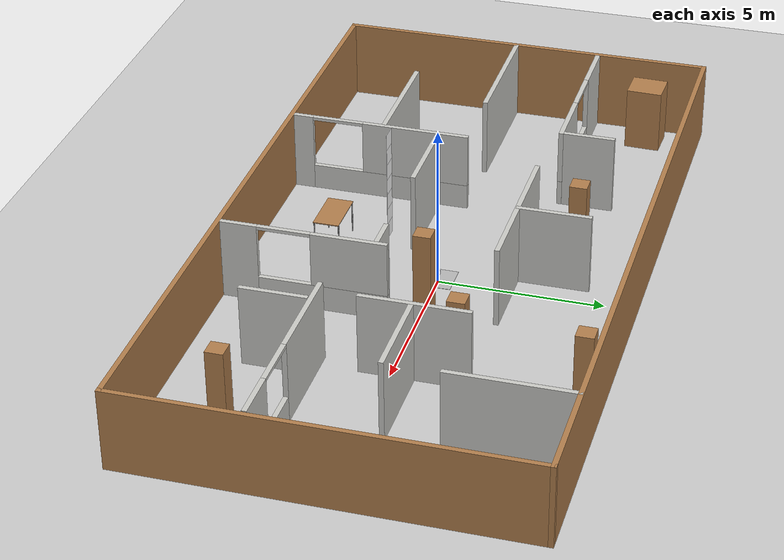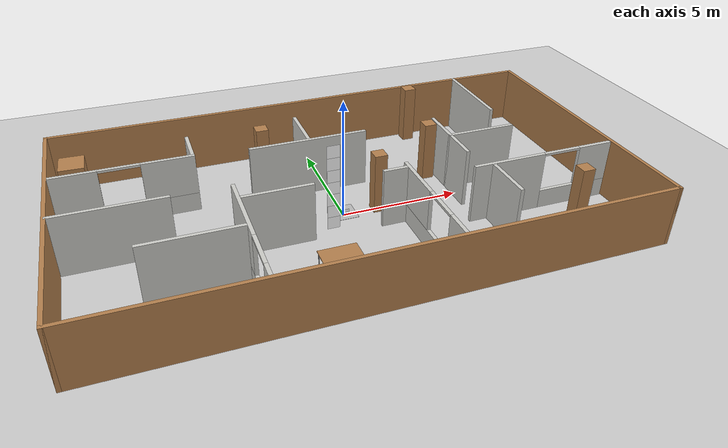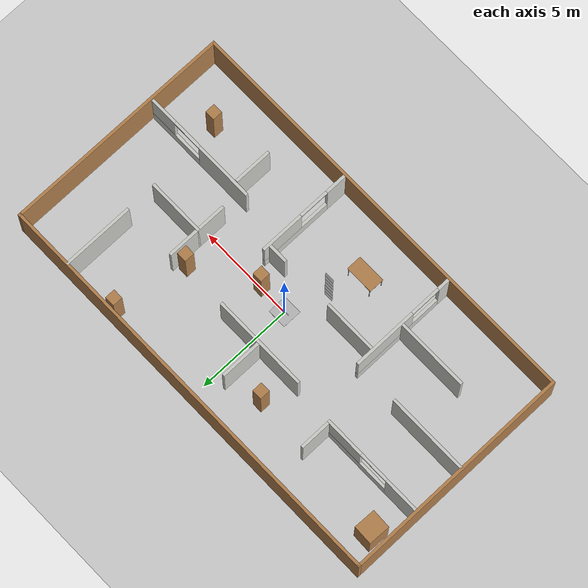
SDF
<sdf version="1.6">
 <world name="default">
  <light name="sun" type="directional">
   <pose>0 0 10 0 -0 0</pose>
   <diffuse>0.8 0.8 0.8 1</diffuse>
   <specular>0.2 0.2 0.2 1</specular>
   <attenuation>
    <range>1000</range>
    <constant>0.9</constant>
    <linear>0.01</linear>
    <quadratic>0.001</quadratic>
   </attenuation>
   <direction>-0.5 0.1 -0.9</direction>
  </light>
  <model name="ground_plane">
   <static>1</static>
   <link name="link">
    <collision name="collision">
     <geometry><plane><normal>0 0 1</normal><size>100 100</size></plane></geometry>
     <surface><friction><ode><mu>100</mu><mu2>50</mu2></ode></friction></surface>
    </collision>
    <visual name="visual">
     <cast_shadows>0</cast_shadows>
     <geometry><plane><normal>0 0 1</normal><size>100 100</size></plane></geometry>
     <material>
      <script><uri>file://media/materials/scripts/gazebo.material</uri><name>Gazebo/Grey</name></script>
     </material>
    </visual>
   </link>
  </model>
  <gravity>0 0 -9.8</gravity>
  <magnetic_field>6e-06 2.3e-05 -4.2e-05</magnetic_field>
  <atmosphere type="adiabatic"/>
  <plugin name="ros_interface_plugin" filename="librotors_gazebo_ros_interface_plugin.so"/>
  <physics name="default_physics" default="0" type="ode">
   <max_step_size>0.001</max_step_size>
   <real_time_factor>1</real_time_factor>
   <real_time_update_rate>1000</real_time_update_rate>
  </physics>
  <scene><ambient>0.4 0.4 0.4 1</ambient><background>0.7 0.7 0.7 1</background><shadows>1</shadows></scene>
  <spherical_coordinates>
   <surface_model>EARTH_WGS84</surface_model>
   <latitude_deg>0</latitude_deg>
   <longitude_deg>0</longitude_deg>
   <elevation>0</elevation>
   <heading_deg>0</heading_deg>
  </spherical_coordinates>
  <model name="20230316">
   <link name="Wall_14">
    <collision name="Wall_14_Collision">
     <geometry><box><size>12 0.15 2.5</size></box></geometry>
     <pose>0 0 1.25 0 -0 0</pose>
    </collision>
    <visual name="Wall_14_Visual">
     <pose>0 0 1.25 0 -0 0</pose>
     <geometry><box><size>12 0.15 2.5</size></box></geometry>
     <material>
      <script><uri>file://media/materials/scripts/gazebo.material</uri><name>Gazebo/Wood</name></script>
      <ambient>1 1 1 1</ambient>
     </material>
     <meta><layer>0</layer></meta>
    </visual>
    <pose>-10.925 0 0 0 -0 -1.5708</pose>
   </link>
   <joint name="apriltag-0_joint" type="fixed"><child>apriltag-0</child><parent>Wall_14</parent></joint>
   <link name="apriltag-0">
    <visual name="apriltag-0">
     <geometry><box><size>0.5 0.01 0.5</size></box></geometry>
     <material>
      <script>
       <uri>model://apriltag/materials/scripts</uri>
       <uri>model://apriltag/materials/textures</uri>
       <name>apriltag/Diffuse0</name>
      </script>
      <ambient>1 1 1 1</ambient>
     </material>
    </visual>
   </link>
   <joint name="apriltag-1_joint" type="fixed"><child>apriltag-1</child><parent>Wall_14</parent></joint>
   <link name="apriltag-1">
    <pose>-1 -1.76 1 0 -0 0</pose>
    <visual name="apriltag-1">
     <geometry><box><size>0.5 0.01 0.5</size></box></geometry>
     <material>
      <script>
       <uri>model://apriltag/materials/scripts</uri>
       <uri>model://apriltag/materials/textures</uri>
       <name>apriltag/Diffuse1</name>
      </script>
      <ambient>1 1 1 1</ambient>
     </material>
    </visual>
   </link>
   <joint name="apriltag-2_joint" type="fixed"><child>apriltag-2</child><parent>Wall_14</parent></joint>
   <link name="apriltag-2">
    <pose>-1 -1.76 1.5 0 -0 0</pose>
    <visual name="apriltag-2">
     <geometry><box><size>0.5 0.01 0.5</size></box></geometry>
     <material>
      <script>
       <uri>model://apriltag/materials/scripts</uri>
       <uri>model://apriltag/materials/textures</uri>
       <name>apriltag/Diffuse2</name>
      </script>
      <ambient>1 1 1 1</ambient>
     </material>
    </visual>
   </link>
   <joint name="apriltag-3_joint" type="fixed"><child>apriltag-3</child><parent>Wall_14</parent></joint>
   <link name="apriltag-3">
    <pose>-1 -1.76 2 0 -0 0</pose>
    <visual name="apriltag-3">
     <geometry><box><size>0.5 0.01 0.5</size></box></geometry>
     <material>
      <script>
       <uri>model://apriltag/materials/scripts</uri>
       <uri>model://apriltag/materials/textures</uri>
       <name>apriltag/Diffuse3</name>
      </script>
      <ambient>1 1 1 1</ambient>
     </material>
    </visual>
   </link>
   <joint name="apriltag-4_joint" type="fixed"><child>apriltag-4</child><parent>Wall_14</parent></joint>
   <link name="apriltag-4">
    <pose>-1 -1.76 2.5 0 -0 0</pose>
    <visual name="apriltag-4">
     <geometry><box><size>0.5 0.01 0.5</size></box></geometry>
     <material>
      <script>
       <uri>model://apriltag/materials/scripts</uri>
       <uri>model://apriltag/materials/textures</uri>
       <name>apriltag/Diffuse4</name>
      </script>
      <ambient>1 1 1 1</ambient>
     </material>
    </visual>
   </link>
   <joint name="apriltag-5_joint" type="fixed"><child>apriltag-5</child><parent>Wall_14</parent></joint>
   <link name="apriltag-5">
    <pose>-1 -1.76 3 0 -0 0</pose>
    <visual name="apriltag-5">
     <geometry><box><size>0.5 0.01 0.5</size></box></geometry>
     <material>
      <script>
       <uri>model://apriltag/materials/scripts</uri>
       <uri>model://apriltag/materials/textures</uri>
       <name>apriltag/Diffuse5</name>
      </script>
      <ambient>1 1 1 1</ambient>
     </material>
    </visual>
   </link>
   <joint name="apriltag-6_joint" type="fixed"><child>apriltag-6</child><parent>Wall_14</parent></joint>
   <link name="apriltag-6">
    <pose>-1 -1.76 3.5 0 -0 0</pose>
    <visual name="apriltag-6">
     <geometry><box><size>0.5 0.01 0.5</size></box></geometry>
     <material>
      <script>
       <uri>model://apriltag/materials/scripts</uri>
       <uri>model://apriltag/materials/textures</uri>
       <name>apriltag/Diffuse6</name>
      </script>
      <ambient>1 1 1 1</ambient>
     </material>
    </visual>
   </link>
   <joint name="apriltag-7_joint" type="fixed"><child>apriltag-7</child><parent>Wall_14</parent></joint>
   <link name="apriltag-7">
    <pose>-1 -1.76 4 0 -0 0</pose>
    <visual name="apriltag-7">
     <geometry><box><size>0.5 0.01 0.5</size></box></geometry>
     <material>
      <script>
       <uri>model://apriltag/materials/scripts</uri>
       <uri>model://apriltag/materials/textures</uri>
       <name>apriltag/Diffuse7</name>
      </script>
      <ambient>1 1 1 1</ambient>
     </material>
    </visual>
   </link>
   <link name="startflag">
    <pose>0 0 0.115 0 -0 0</pose>
    <inertial>
     <mass>0.39</mass>
     <inertia><ixx>0.00058</ixx><ixy>0</ixy><ixz>0</ixz><iyy>0.00058</iyy><iyz>0</iyz><izz>0.00019</izz></inertia>
    </inertial>
    <collision name="collision"><geometry><box><size>1 1 0.01</size></box></geometry></collision>
    <visual name="visual">
     <geometry><box><size>1 1 0.01</size></box></geometry>
     <material>
      <script>
       <uri>model://apriltag/materials/scripts</uri>
       <uri>model://apriltag/materials/textures</uri>
       <name>startflag/Diffuse</name>
      </script>
     </material>
    </visual>
   </link>
   <link name="Wall_15">
    <collision name="Wall_15_Collision">
     <geometry><box><size>22 0.15 2.5</size></box></geometry>
     <pose>0 0 1.25 0 -0 0</pose>
    </collision>
    <visual name="Wall_15_Visual">
     <pose>0 0 1.25 0 -0 0</pose>
     <geometry><box><size>22 0.15 2.5</size></box></geometry>
     <material>
      <script><uri>file://media/materials/scripts/gazebo.material</uri><name>Gazebo/Wood</name></script>
      <ambient>1 1 1 1</ambient>
     </material>
     <meta><layer>0</layer></meta>
    </visual>
    <pose>0 -5.925 0 0 -0 0</pose>
   </link>
   <link name="Wall_16">
    <collision name="Wall_16_Collision">
     <geometry><box><size>12 0.15 2.5</size></box></geometry>
     <pose>0 0 1.25 0 -0 0</pose>
    </collision>
    <visual name="Wall_16_Visual">
     <pose>0 0 1.25 0 -0 0</pose>
     <geometry><box><size>12 0.15 2.5</size></box></geometry>
     <material>
      <script><uri>file://media/materials/scripts/gazebo.material</uri><name>Gazebo/Wood</name></script>
      <ambient>1 1 1 1</ambient>
     </material>
     <meta><layer>0</layer></meta>
    </visual>
    <pose>10.925 0 0 0 -0 1.5708</pose>
   </link>
   <link name="Wall_17">
    <collision name="Wall_17_Collision">
     <geometry><box><size>22 0.15 2.5</size></box></geometry>
     <pose>0 0 1.25 0 -0 0</pose>
    </collision>
    <visual name="Wall_17_Visual">
     <pose>0 0 1.25 0 -0 0</pose>
     <geometry><box><size>22 0.15 2.5</size></box></geometry>
     <material>
      <script><uri>file://media/materials/scripts/gazebo.material</uri><name>Gazebo/Wood</name></script>
      <ambient>1 1 1 1</ambient>
     </material>
     <meta><layer>0</layer></meta>
    </visual>
    <pose>0 5.925 0 0 -0 3.14159</pose>
   </link>
   <link name="Wall_22">
    <collision name="Wall_22_Collision">
     <geometry><box><size>3.75 0.15 2.5</size></box></geometry>
     <pose>0 0 1.25 0 -0 0</pose>
    </collision>
    <visual name="Wall_22_Visual">
     <pose>0 0 1.25 0 -0 0</pose>
     <geometry><box><size>3.75 0.15 2.5</size></box></geometry>
     <material>
      <script><uri>file://media/materials/scripts/gazebo.material</uri><name>Gazebo/CeilingTiled</name></script>
      <ambient>0.921569 0.807843 0.615686 1</ambient>
     </material>
     <meta><layer>0</layer></meta>
    </visual>
    <pose>7.80154 4.0984 0 0 -0 -1.5708</pose>
   </link>
   <link name="Wall_25">
    <collision name="Wall_25_Collision">
     <geometry><box><size>3.25 0.15 2.5</size></box></geometry>
     <pose>0 0 1.25 0 -0 0</pose>
    </collision>
    <visual name="Wall_25_Visual">
     <pose>0 0 1.25 0 -0 0</pose>
     <geometry><box><size>3.25 0.15 2.5</size></box></geometry>
     <material>
      <script><uri>file://media/materials/scripts/gazebo.material</uri><name>Gazebo/CeilingTiled</name></script>
      <ambient>0.921569 0.807843 0.615686 1</ambient>
     </material>
     <meta><layer>0</layer></meta>
    </visual>
    <pose>4.95532 0.704173 0 0 -0 -1.5708</pose>
   </link>
   <link name="Wall_28">
    <collision name="Wall_28_Collision">
     <geometry><box><size>3 0.15 2.5</size></box></geometry>
     <pose>0 0 1.25 0 -0 0</pose>
    </collision>
    <visual name="Wall_28_Visual">
     <pose>0 0 1.25 0 -0 0</pose>
     <geometry><box><size>3 0.15 2.5</size></box></geometry>
     <material>
      <script><uri>file://media/materials/scripts/gazebo.material</uri><name>Gazebo/CeilingTiled</name></script>
      <ambient>0.921569 0.807843 0.615686 1</ambient>
     </material>
     <meta><layer>0</layer></meta>
    </visual>
    <pose>6.38032 0.631561 0 0 -0 0</pose>
   </link>
   <link name="Wall_30">
    <collision name="Wall_30_Collision">
     <geometry><box><size>2.25 0.15 2.5</size></box></geometry>
     <pose>0 0 1.25 0 -0 0</pose>
    </collision>
    <visual name="Wall_30_Visual">
     <pose>0 0 1.25 0 -0 0</pose>
     <geometry><box><size>2.25 0.15 2.5</size></box></geometry>
     <material>
      <script><uri>file://media/materials/scripts/gazebo.material</uri><name>Gazebo/CeilingTiled</name></script>
      <ambient>0.921569 0.807843 0.615686 1</ambient>
     </material>
     <meta><layer>0</layer></meta>
    </visual>
    <pose>-0.710524 3.27899 0 0 -0 -1.5708</pose>
   </link>
   <link name="Wall_32">
    <collision name="Wall_32_Collision">
     <geometry><box><size>5 0.15 2.5</size></box></geometry>
     <pose>0 0 1.25 0 -0 0</pose>
    </collision>
    <visual name="Wall_32_Visual">
     <pose>0 0 1.25 0 -0 0</pose>
     <geometry><box><size>5 0.15 2.5</size></box></geometry>
     <material>
      <script><uri>file://media/materials/scripts/gazebo.material</uri><name>Gazebo/CeilingTiled</name></script>
      <ambient>0.921569 0.807843 0.615686 1</ambient>
     </material>
     <meta><layer>0</layer></meta>
    </visual>
    <pose>-0.732742 2.20097 0 0 -0 0</pose>
   </link>
   <link name="Wall_41">
    <collision name="Wall_41_Collision">
     <geometry><box><size>4.25 0.15 2.5</size></box></geometry>
     <pose>0 0 1.25 0 -0 0</pose>
    </collision>
    <visual name="Wall_41_Visual">
     <pose>0 0 1.25 0 -0 0</pose>
     <geometry><box><size>4.25 0.15 2.5</size></box></geometry>
     <material>
      <script><uri>file://media/materials/scripts/gazebo.material</uri><name>Gazebo/CeilingTiled</name></script>
      <ambient>0.921569 0.807843 0.615686 1</ambient>
     </material>
     <meta><layer>0</layer></meta>
    </visual>
    <pose>-8.7952 -0.299446 0 0 -0 0</pose>
   </link>
   <link name="Wall_43">
    <collision name="Wall_43_Collision">
     <geometry><box><size>3.75 0.15 2.5</size></box></geometry>
     <pose>0 0 1.25 0 -0 0</pose>
    </collision>
    <visual name="Wall_43_Visual">
     <pose>0 0 1.25 0 -0 0</pose>
     <geometry><box><size>3.75 0.15 2.5</size></box></geometry>
     <material>
      <script><uri>file://media/materials/scripts/gazebo.material</uri><name>Gazebo/CeilingTiled</name></script>
      <ambient>0.921569 0.807843 0.615686 1</ambient>
     </material>
     <meta><layer>0</layer></meta>
    </visual>
    <pose>-6.33198 -2.95947 0 0 -0 0</pose>
   </link>
   <static>1</static>
  </model>
  <model name="window1">
   <pose>7.71672 -2.0654 0 0 -0 0</pose>
   <link name="Wall_0">
    <visual name="Wall_0_Visual_0">
     <pose>-1.54209 0 1.25 0 -0 0</pose>
     <geometry><box><size>3.11583 0.15 2.5</size></box></geometry>
     <material>
      <script><uri>file://media/materials/scripts/gazebo.material</uri><name>Gazebo/CeilingTiled</name></script>
      <ambient>1 0.764706 0.305882 1</ambient>
     </material>
     <meta><layer>0</layer></meta>
    </visual>
    <collision name="Wall_0_Collision_0">
     <geometry><box><size>3.11583 0.15 2.5</size></box></geometry>
     <pose>-1.54209 0 1.25 0 -0 0</pose>
    </collision>
    <visual name="Wall_0_Visual_1">
     <pose>1.55791 0 0.4 0 -0 0</pose>
     <geometry><box><size>3.08418 0.15 0.8</size></box></geometry>
     <material>
      <script><uri>file://media/materials/scripts/gazebo.material</uri><name>Gazebo/CeilingTiled</name></script>
      <ambient>1 0.764706 0.305882 1</ambient>
     </material>
     <meta><layer>0</layer></meta>
    </visual>
    <collision name="Wall_0_Collision_1">
     <geometry><box><size>3.08418 0.15 0.8</size></box></geometry>
     <pose>1.55791 0 0.4 0 -0 0</pose>
    </collision>
    <visual name="Wall_0_Visual_2">
     <pose>2.35791 0 1.65 0 -0 0</pose>
     <geometry><box><size>1.48418 0.15 1.7</size></box></geometry>
     <material>
      <script><uri>file://media/materials/scripts/gazebo.material</uri><name>Gazebo/CeilingTiled</name></script>
      <ambient>1 0.764706 0.305882 1</ambient>
     </material>
     <meta><layer>0</layer></meta>
    </visual>
    <collision name="Wall_0_Collision_2">
     <geometry><box><size>1.48418 0.15 1.7</size></box></geometry>
     <pose>2.35791 0 1.65 0 -0 0</pose>
    </collision>
    <visual name="Wall_0_Visual_3">
     <pose>0.815825 0 2.45 0 -0 0</pose>
     <geometry><box><size>1.6 0.15 0.1</size></box></geometry>
     <material>
      <script><uri>file://media/materials/scripts/gazebo.material</uri><name>Gazebo/CeilingTiled</name></script>
      <ambient>1 0.764706 0.305882 1</ambient>
     </material>
     <meta><layer>0</layer></meta>
    </visual>
    <collision name="Wall_0_Collision_3">
     <geometry><box><size>1.6 0.15 0.1</size></box></geometry>
     <pose>0.815825 0 2.45 0 -0 0</pose>
    </collision>
   </link>
   <static>1</static>
  </model>
  <model name="window2">
   <pose>2.26488 -3.35 0 0 -0 0</pose>
   <link name="Wall_2">
    <pose>0 -0 0 0 -0 1.5708</pose>
    <visual name="Wall_2_Visual_0">
     <pose>-1.94455 0 1.25 0 -0 0</pose>
     <geometry><box><size>1.1109 0.15 2.5</size></box></geometry>
     <material>
      <script><uri>file://media/materials/scripts/gazebo.material</uri><name>Gazebo/CeilingTiled</name></script>
      <ambient>1 0.764706 0.305882 1</ambient>
     </material>
     <meta><layer>0</layer></meta>
    </visual>
    <collision name="Wall_2_Collision_0">
     <geometry><box><size>1.1109 0.15 2.5</size></box></geometry>
     <pose>-1.94455 0 1.25 0 -0 0</pose>
    </collision>
    <visual name="Wall_2_Visual_1">
     <pose>0.555448 0 0.4 0 -0 0</pose>
     <geometry><box><size>3.8891 0.15 0.8</size></box></geometry>
     <material>
      <script><uri>file://media/materials/scripts/gazebo.material</uri><name>Gazebo/CeilingTiled</name></script>
      <ambient>1 0.764706 0.305882 1</ambient>
     </material>
     <meta><layer>0</layer></meta>
    </visual>
    <collision name="Wall_2_Collision_1">
     <geometry><box><size>3.8891 0.15 0.8</size></box></geometry>
     <pose>0.555448 0 0.4 0 -0 0</pose>
    </collision>
    <visual name="Wall_2_Visual_2">
     <pose>1.35545 0 1.65 0 -0 0</pose>
     <geometry><box><size>2.2891 0.15 1.7</size></box></geometry>
     <material>
      <script><uri>file://media/materials/scripts/gazebo.material</uri><name>Gazebo/CeilingTiled</name></script>
      <ambient>1 0.764706 0.305882 1</ambient>
     </material>
     <meta><layer>0</layer></meta>
    </visual>
    <collision name="Wall_2_Collision_2">
     <geometry><box><size>2.2891 0.15 1.7</size></box></geometry>
     <pose>1.35545 0 1.65 0 -0 0</pose>
    </collision>
    <visual name="Wall_2_Visual_3">
     <pose>-0.589104 0 2.45 0 -0 0</pose>
     <geometry><box><size>1.6 0.15 0.1</size></box></geometry>
     <material>
      <script><uri>file://media/materials/scripts/gazebo.material</uri><name>Gazebo/CeilingTiled</name></script>
      <ambient>1 0.764706 0.305882 1</ambient>
     </material>
     <meta><layer>0</layer></meta>
    </visual>
    <collision name="Wall_2_Collision_3">
     <geometry><box><size>1.6 0.15 0.1</size></box></geometry>
     <pose>-0.589104 0 2.45 0 -0 0</pose>
    </collision>
   </link>
   <static>1</static>
  </model>
  <model name="window3">
   <pose>-4.4 -3.05 0 0 -0 0</pose>
   <link name="Wall_0">
    <pose>0 0 0 0 -0 1.5708</pose>
    <visual name="Wall_0_Visual_0">
     <pose>-2.48617 0 1.25 0 -0 0</pose>
     <geometry><box><size>0.62765 0.15 2.5</size></box></geometry>
     <material>
      <script><uri>file://media/materials/scripts/gazebo.material</uri><name>Gazebo/CeilingTiled</name></script>
      <ambient>1 0.764706 0.305882 1</ambient>
     </material>
     <meta><layer>0</layer></meta>
    </visual>
    <collision name="Wall_0_Collision_0">
     <geometry><box><size>0.62765 0.15 2.5</size></box></geometry>
     <pose>-2.48617 0 1.25 0 -0 0</pose>
    </collision>
    <visual name="Wall_0_Visual_1">
     <pose>0.313825 0 0.4 0 -0 0</pose>
     <geometry><box><size>4.97235 0.15 0.8</size></box></geometry>
     <material>
      <script><uri>file://media/materials/scripts/gazebo.material</uri><name>Gazebo/CeilingTiled</name></script>
      <ambient>1 0.764706 0.305882 1</ambient>
     </material>
     <meta><layer>0</layer></meta>
    </visual>
    <collision name="Wall_0_Collision_1">
     <geometry><box><size>4.97235 0.15 0.8</size></box></geometry>
     <pose>0.313825 0 0.4 0 -0 0</pose>
    </collision>
    <visual name="Wall_0_Visual_2">
     <pose>1.11383 0 1.65 0 -0 0</pose>
     <geometry><box><size>3.37235 0.15 1.7</size></box></geometry>
     <material>
      <script><uri>file://media/materials/scripts/gazebo.material</uri><name>Gazebo/CeilingTiled</name></script>
      <ambient>1 0.764706 0.305882 1</ambient>
     </material>
     <meta><layer>0</layer></meta>
    </visual>
    <collision name="Wall_0_Collision_2">
     <geometry><box><size>3.37235 0.15 1.7</size></box></geometry>
     <pose>1.11383 0 1.65 0 -0 0</pose>
    </collision>
    <visual name="Wall_0_Visual_3">
     <pose>-1.37235 0 2.45 0 -0 0</pose>
     <geometry><box><size>1.6 0.15 0.1</size></box></geometry>
     <material>
      <script><uri>file://media/materials/scripts/gazebo.material</uri><name>Gazebo/CeilingTiled</name></script>
      <ambient>1 0.764706 0.305882 1</ambient>
     </material>
     <meta><layer>0</layer></meta>
    </visual>
    <collision name="Wall_0_Collision_3">
     <geometry><box><size>1.6 0.15 0.1</size></box></geometry>
     <pose>-1.37235 0 2.45 0 -0 0</pose>
    </collision>
   </link>
   <static>1</static>
  </model>
  <model name="window4">
   <pose>-8.1 2.44144 0 0 -0 0</pose>
   <link name="Wall_5">
    <visual name="Wall_5_Visual_0">
     <pose>-1.8495 0 1.25 0 -0 0</pose>
     <geometry><box><size>1.801 0.15 2.5</size></box></geometry>
     <material>
      <script><uri>file://media/materials/scripts/gazebo.material</uri><name>Gazebo/CeilingTiled</name></script>
      <ambient>1 0.764706 0.305882 1</ambient>
     </material>
     <meta><layer>0</layer></meta>
    </visual>
    <collision name="Wall_5_Collision_0">
     <geometry><box><size>1.801 0.15 2.5</size></box></geometry>
     <pose>-1.8495 0 1.25 0 -0 0</pose>
    </collision>
    <visual name="Wall_5_Visual_1">
     <pose>0.9005 0 0.4 0 -0 0</pose>
     <geometry><box><size>3.699 0.15 0.8</size></box></geometry>
     <material>
      <script><uri>file://media/materials/scripts/gazebo.material</uri><name>Gazebo/CeilingTiled</name></script>
      <ambient>1 0.764706 0.305882 1</ambient>
     </material>
     <meta><layer>0</layer></meta>
    </visual>
    <collision name="Wall_5_Collision_1">
     <geometry><box><size>3.699 0.15 0.8</size></box></geometry>
     <pose>0.9005 0 0.4 0 -0 0</pose>
    </collision>
    <visual name="Wall_5_Visual_2">
     <pose>1.7005 0 1.65 0 -0 0</pose>
     <geometry><box><size>2.099 0.15 1.7</size></box></geometry>
     <material>
      <script><uri>file://media/materials/scripts/gazebo.material</uri><name>Gazebo/CeilingTiled</name></script>
      <ambient>1 0.764706 0.305882 1</ambient>
     </material>
     <meta><layer>0</layer></meta>
    </visual>
    <collision name="Wall_5_Collision_2">
     <geometry><box><size>2.099 0.15 1.7</size></box></geometry>
     <pose>1.7005 0 1.65 0 -0 0</pose>
    </collision>
    <visual name="Wall_5_Visual_3">
     <pose>-0.149 0 2.45 0 -0 0</pose>
     <geometry><box><size>1.6 0.15 0.1</size></box></geometry>
     <material>
      <script><uri>file://media/materials/scripts/gazebo.material</uri><name>Gazebo/CeilingTiled</name></script>
      <ambient>1 0.764706 0.305882 1</ambient>
     </material>
     <meta><layer>0</layer></meta>
    </visual>
    <collision name="Wall_5_Collision_3">
     <geometry><box><size>1.6 0.15 0.1</size></box></geometry>
     <pose>-0.149 0 2.45 0 -0 0</pose>
    </collision>
   </link>
   <static>1</static>
  </model>
  <model name="add_wall1">
   <pose>5.42333 -3.1581 0 0 -0 0</pose>
   <link name="Wall_1">
    <collision name="Wall_1_Collision">
     <geometry><box><size>2 0.15 2.5</size></box></geometry>
     <pose>0 0 1.25 0 -0 0</pose>
    </collision>
    <visual name="Wall_1_Visual">
     <pose>0 0 1.25 0 -0 0</pose>
     <geometry><box><size>2 0.15 2.5</size></box></geometry>
     <material>
      <script><uri>file://media/materials/scripts/gazebo.material</uri><name>Gazebo/CeilingTiled</name></script>
      <ambient>1 0.764706 0.305882 1</ambient>
     </material>
     <meta><layer>0</layer></meta>
    </visual>
    <pose>0 0 0 0 -0 -1.5708</pose>
   </link>
   <static>1</static>
  </model>
  <model name="add_wall2">
   <pose>-5.43 3.31172 0 0 -0 0</pose>
   <link name="Wall_5">
    <collision name="Wall_5_Collision">
     <geometry><box><size>1.6 0.15 2.5</size></box></geometry>
     <pose>0 0 1.25 0 -0 0</pose>
    </collision>
    <visual name="Wall_5_Visual">
     <pose>0 0 1.25 0 -0 0</pose>
     <geometry><box><size>1.6 0.15 2.5</size></box></geometry>
     <material>
      <script><uri>file://media/materials/scripts/gazebo.material</uri><name>Gazebo/CeilingTiled</name></script>
      <ambient>1 0.764706 0.305882 1</ambient>
     </material>
     <meta><layer>0</layer></meta>
    </visual>
    <pose>0 0 0 0 -0 1.5708</pose>
   </link>
   <static>1</static>
  </model>
  <model name="add_wall3">
   <pose>-2.95 -1.2 0 0 -0 0</pose>
   <link name="Wall_9">
    <collision name="Wall_9_Collision">
     <geometry><box><size>2.8 0.15 2.5</size></box></geometry>
     <pose>0 0 1.25 0 -0 0</pose>
    </collision>
    <visual name="Wall_9_Visual">
     <pose>0 0 1.25 0 -0 0</pose>
     <geometry><box><size>2.8 0.15 2.5</size></box></geometry>
     <material>
      <script><uri>file://media/materials/scripts/gazebo.material</uri><name>Gazebo/CeilingTiled</name></script>
      <ambient>1 0.764706 0.305882 1</ambient>
     </material>
     <meta><layer>0</layer></meta>
    </visual>
   </link>
   <static>1</static>
  </model>
  <model name="add_wall4">
   <pose>1.69 -1.2 0 0 -0 0</pose>
   <link name="Wall_15">
    <collision name="Wall_15_Collision">
     <geometry><box><size>1 0.15 2.5</size></box></geometry>
     <pose>0 0 1.25 0 -0 0</pose>
    </collision>
    <visual name="Wall_15_Visual">
     <pose>0 0 1.25 0 -0 0</pose>
     <geometry><box><size>1 0.15 2.5</size></box></geometry>
     <material>
      <script><uri>file://media/materials/scripts/gazebo.material</uri><name>Gazebo/CeilingTiled</name></script>
      <ambient>1 0.764706 0.305882 1</ambient>
     </material>
     <meta><layer>0</layer></meta>
    </visual>
    <pose>0 0 0 0 -0 3.14159</pose>
   </link>
   <static>1</static>
  </model>
  <model name="unit_box">
   <pose>-10.0322 4.27279 1.01795 4e-06 2e-06 -0.033335</pose>
   <link name="link">
    <inertial>
     <mass>1</mass>
     <inertia>
      <ixx>0.166667</ixx>
      <ixy>0</ixy>
      <ixz>0</ixz>
      <iyy>0.166667</iyy>
      <iyz>0</iyz>
      <izz>0.166667</izz>
     </inertia>
    </inertial>
    <collision name="collision"><geometry><box><size>1 1.11313 2.03591</size></box></geometry></collision>
    <visual name="visual">
     <geometry><box><size>1 1.11313 2.03591</size></box></geometry>
     <material>
      <script><uri>file://media/materials/scripts/gazebo.material</uri><name>Gazebo/Wood</name></script>
     </material>
    </visual>
   </link>
  </model>
  <model name="table">
   <static>1</static>
   <link name="link">
    <collision name="surface">
     <pose>0 0 1 0 -0 0</pose>
     <geometry><box><size>1.5 0.8 0.03</size></box></geometry>
     <surface><friction><ode><mu>0.6</mu><mu2>0.6</mu2></ode></friction></surface>
    </collision>
    <visual name="visual1">
     <pose>0 0 1 0 -0 0</pose>
     <geometry><box><size>1.5 0.8 0.03</size></box></geometry>
     <material>
      <script><uri>file://media/materials/scripts/gazebo.material</uri><name>Gazebo/Wood</name></script>
     </material>
    </visual>
    <collision name="front_left_leg">
     <pose>0.68 0.38 0.5 0 -0 0</pose>
     <geometry><cylinder><radius>0.02</radius><length>1</length></cylinder></geometry>
    </collision>
    <visual name="front_left_leg">
     <pose>0.68 0.38 0.5 0 -0 0</pose>
     <geometry><cylinder><radius>0.02</radius><length>1</length></cylinder></geometry>
     <material>
      <script><uri>file://media/materials/scripts/gazebo.material</uri><name>Gazebo/Grey</name></script>
     </material>
    </visual>
    <collision name="front_right_leg">
     <pose>0.68 -0.38 0.5 0 -0 0</pose>
     <geometry><cylinder><radius>0.02</radius><length>1</length></cylinder></geometry>
    </collision>
    <visual name="front_right_leg">
     <pose>0.68 -0.38 0.5 0 -0 0</pose>
     <geometry><cylinder><radius>0.02</radius><length>1</length></cylinder></geometry>
     <material>
      <script><uri>file://media/materials/scripts/gazebo.material</uri><name>Gazebo/Grey</name></script>
     </material>
    </visual>
    <collision name="back_right_leg">
     <pose>-0.68 -0.38 0.5 0 -0 0</pose>
     <geometry><cylinder><radius>0.02</radius><length>1</length></cylinder></geometry>
    </collision>
    <visual name="back_right_leg">
     <pose>-0.68 -0.38 0.5 0 -0 0</pose>
     <geometry><cylinder><radius>0.02</radius><length>1</length></cylinder></geometry>
     <material>
      <script><uri>file://media/materials/scripts/gazebo.material</uri><name>Gazebo/Grey</name></script>
     </material>
    </visual>
    <collision name="back_left_leg">
     <pose>-0.68 0.38 0.5 0 -0 0</pose>
     <geometry><cylinder><radius>0.02</radius><length>1</length></cylinder></geometry>
    </collision>
    <visual name="back_left_leg">
     <pose>-0.68 0.38 0.5 0 -0 0</pose>
     <geometry><cylinder><radius>0.02</radius><length>1</length></cylinder></geometry>
     <material>
      <script><uri>file://media/materials/scripts/gazebo.material</uri><name>Gazebo/Grey</name></script>
     </material>
    </visual>
   </link>
   <pose>-1.40584 -3.66513 0 0 -0 0</pose>
  </model>
  <model name="unit_box_0">
   <pose>1.5 -5e-06 1.29125 1e-06 -1e-06 -0.001112</pose>
   <link name="link">
    <inertial>
     <mass>1</mass>
     <inertia>
      <ixx>0.166667</ixx>
      <ixy>0</ixy>
      <ixz>0</ixz>
      <iyy>0.166667</iyy>
      <iyz>0</iyz>
      <izz>0.166667</izz>
     </inertia>
    </inertial>
    <collision name="collision"><geometry><box><size>0.52404 0.528613 2.5825</size></box></geometry></collision>
    <visual name="visual">
     <geometry><box><size>0.52404 0.528613 2.5825</size></box></geometry>
     <material>
      <script><uri>file://media/materials/scripts/gazebo.material</uri><name>Gazebo/Wood</name></script>
     </material>
    </visual>
   </link>
  </model>
  <model name="unit_box_0_clone">
   <pose>4.50001 1.80003 1.29125 -1e-06 1e-06 -0.001527</pose>
   <link name="link">
    <inertial>
     <mass>1</mass>
     <inertia>
      <ixx>0.166667</ixx>
      <ixy>0</ixy>
      <ixz>0</ixz>
      <iyy>0.166667</iyy>
      <iyz>0</iyz>
      <izz>0.166667</izz>
     </inertia>
    </inertial>
    <collision name="collision"><geometry><box><size>0.52404 0.528614 2.5825</size></box></geometry></collision>
    <visual name="visual">
     <geometry><box><size>0.52404 0.528614 2.5825</size></box></geometry>
     <material>
      <script><uri>file://media/materials/scripts/gazebo.material</uri><name>Gazebo/Wood</name></script>
     </material>
    </visual>
   </link>
  </model>
  <model name="unit_box_0_clone_0">
   <pose>5.2 5.5 1.29125 1e-06 0 -0.00254</pose>
   <link name="link">
    <inertial>
     <mass>1</mass>
     <inertia>
      <ixx>0.166667</ixx>
      <ixy>0</ixy>
      <ixz>0</ixz>
      <iyy>0.166667</iyy>
      <iyz>0</iyz>
      <izz>0.166667</izz>
     </inertia>
    </inertial>
    <collision name="collision"><geometry><box><size>0.52404 0.528614 2.5825</size></box></geometry></collision>
    <visual name="visual">
     <geometry><box><size>0.52404 0.528614 2.5825</size></box></geometry>
     <material>
      <script><uri>file://media/materials/scripts/gazebo.material</uri><name>Gazebo/Wood</name></script>
     </material>
    </visual>
   </link>
  </model>
  <model name="unit_box_0_clone_2">
   <pose>-2.3732 3.67984 1.29125 1e-06 1e-06 -0.000399</pose>
   <link name="link">
    <inertial>
     <mass>1</mass>
     <inertia>
      <ixx>0.166667</ixx>
      <ixy>0</ixy>
      <ixz>0</ixz>
      <iyy>0.166667</iyy>
      <iyz>0</iyz>
      <izz>0.166667</izz>
     </inertia>
    </inertial>
    <collision name="collision"><geometry><box><size>0.52404 0.528614 2.5825</size></box></geometry></collision>
    <visual name="visual">
     <geometry><box><size>0.52404 0.528614 2.5825</size></box></geometry>
     <material>
      <script><uri>file://media/materials/scripts/gazebo.material</uri><name>Gazebo/Wood</name></script>
     </material>
    </visual>
   </link>
  </model>
  <model name="unit_box_0_clone_3">
   <pose>8.48134 -3.64115 1.29125 1e-06 1e-06 0.001433</pose>
   <link name="link">
    <inertial>
     <mass>1</mass>
     <inertia>
      <ixx>0.166667</ixx>
      <ixy>0</ixy>
      <ixz>0</ixz>
      <iyy>0.166667</iyy>
      <iyz>0</iyz>
      <izz>0.166667</izz>
     </inertia>
    </inertial>
    <collision name="collision"><geometry><box><size>0.52404 0.528614 2.5825</size></box></geometry></collision>
    <visual name="visual">
     <geometry><box><size>0.52404 0.528614 2.5825</size></box></geometry>
     <material>
      <script><uri>file://media/materials/scripts/gazebo.material</uri><name>Gazebo/Wood</name></script>
     </material>
    </visual>
   </link>
  </model>
 </world>
</sdf>
